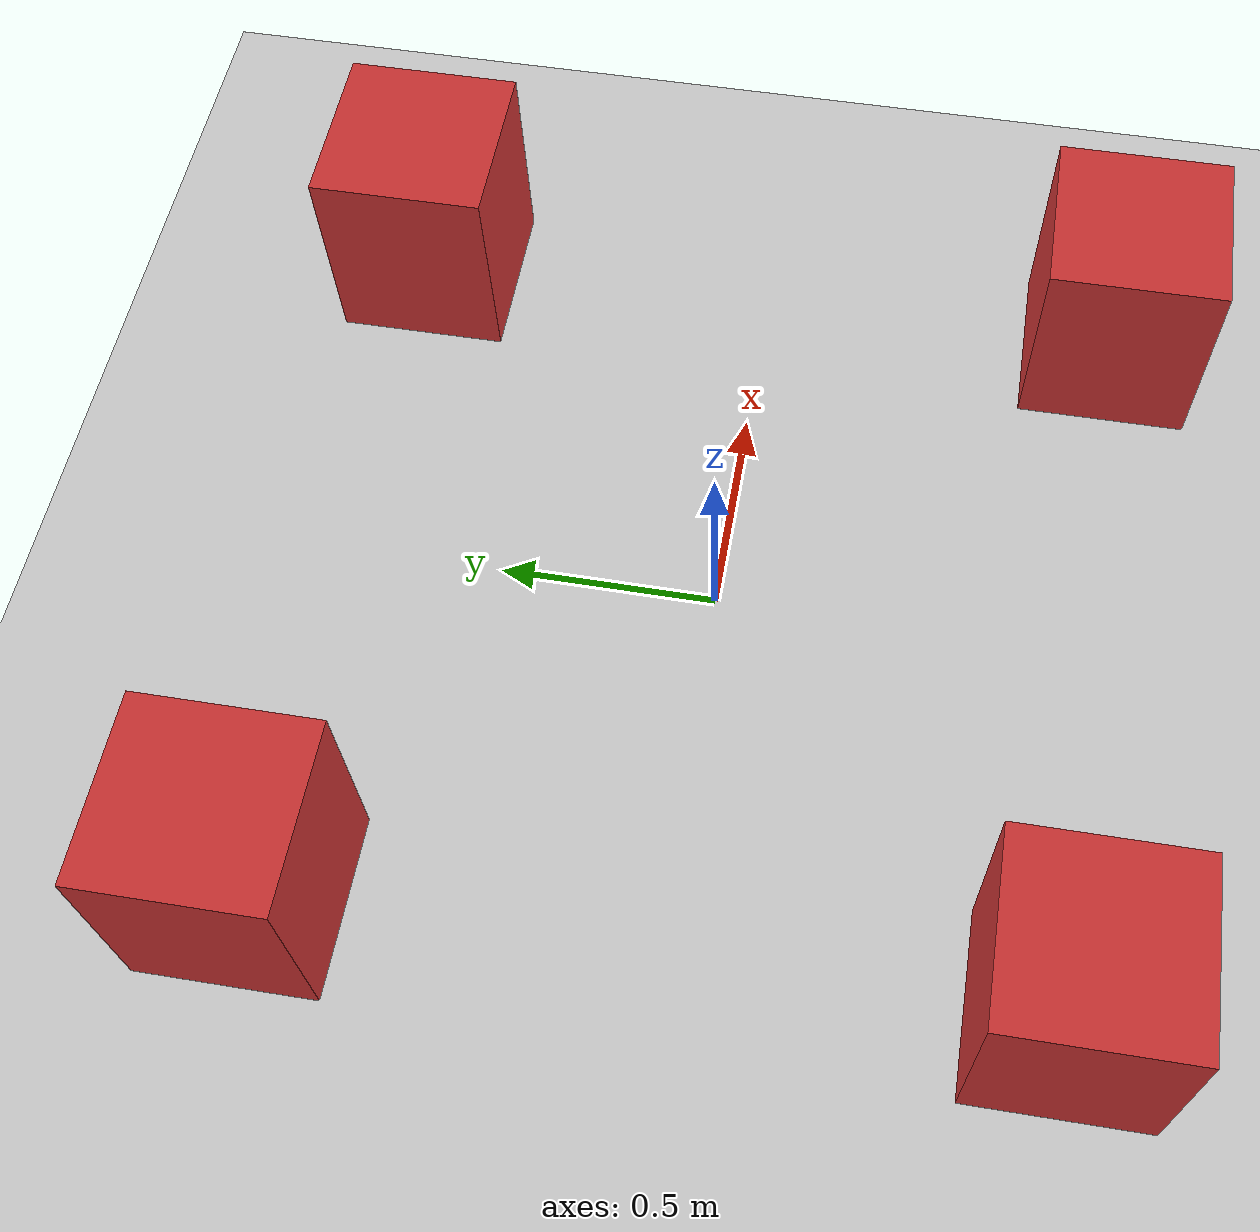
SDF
<?xml version="1.0"?>
<sdf version="1.6">
  <world name="default">

    <include>
      <uri>model://ground_plane</uri>
    </include>

    <include>
      <uri>model://sun</uri>
    </include>

    <scene>
      <shadows>false</shadows>
    </scene>

    <gui fullscreen='0'>
      <camera name='user_camera'>
        <pose frame=''>0.319654 -0.235002 9.29441 0 1.5138 0.009599</pose>
        <view_controller>orbit</view_controller>
        <projection_type>perspective</projection_type>
      </camera>
    </gui>

    <physics type="ode">
      <real_time_update_rate>1000.0</real_time_update_rate>
      <max_step_size>0.001</max_step_size>
      <real_time_factor>1</real_time_factor>
      <ode>
        <solver>
          <type>quick</type>
          <iters>150</iters>
          <precon_iters>0</precon_iters>
          <sor>1.400000</sor>
          <use_dynamic_moi_rescaling>1</use_dynamic_moi_rescaling>
        </solver>
        <constraints>
          <cfm>0.00001</cfm>
          <erp>0.2</erp>
          <contact_max_correcting_vel>2000.000000</contact_max_correcting_vel>
          <contact_surface_layer>0.01000</contact_surface_layer>
        </constraints>
      </ode>
    </physics>

    <model name="obstacle_ne">
      <static>true</static>
      <pose>0.85 0.85 0.25 0 0 0</pose>
      <link name="link">
        <collision name="collision">
          <geometry><box><size>0.4 0.4 0.5</size></box></geometry>
        </collision>
        <visual name="visual">
          <geometry><box><size>0.4 0.4 0.5</size></box></geometry>
          <material>
            <ambient>0.8 0.2 0.2 1</ambient>
            <diffuse>0.8 0.2 0.2 1</diffuse>
          </material>
        </visual>
      </link>
    </model>

    <model name="obstacle_nw">
      <static>true</static>
      <pose>-0.85 0.85 0.25 0 0 0</pose>
      <link name="link">
        <collision name="collision">
          <geometry><box><size>0.4 0.4 0.5</size></box></geometry>
        </collision>
        <visual name="visual">
          <geometry><box><size>0.4 0.4 0.5</size></box></geometry>
          <material>
            <ambient>0.8 0.2 0.2 1</ambient>
            <diffuse>0.8 0.2 0.2 1</diffuse>
          </material>
        </visual>
      </link>
    </model>

    <model name="obstacle_sw">
      <static>true</static>
      <pose>-0.85 -0.85 0.25 0 0 0</pose>
      <link name="link">
        <collision name="collision">
          <geometry><box><size>0.4 0.4 0.5</size></box></geometry>
        </collision>
        <visual name="visual">
          <geometry><box><size>0.4 0.4 0.5</size></box></geometry>
          <material>
            <ambient>0.8 0.2 0.2 1</ambient>
            <diffuse>0.8 0.2 0.2 1</diffuse>
          </material>
        </visual>
      </link>
    </model>

    <model name="obstacle_se">
      <static>true</static>
      <pose>0.85 -0.85 0.25 0 0 0</pose>
      <link name="link">
        <collision name="collision">
          <geometry><box><size>0.4 0.4 0.5</size></box></geometry>
        </collision>
        <visual name="visual">
          <geometry><box><size>0.4 0.4 0.5</size></box></geometry>
          <material>
            <ambient>0.8 0.2 0.2 1</ambient>
            <diffuse>0.8 0.2 0.2 1</diffuse>
          </material>
        </visual>
      </link>
    </model>

  </world>
</sdf>
